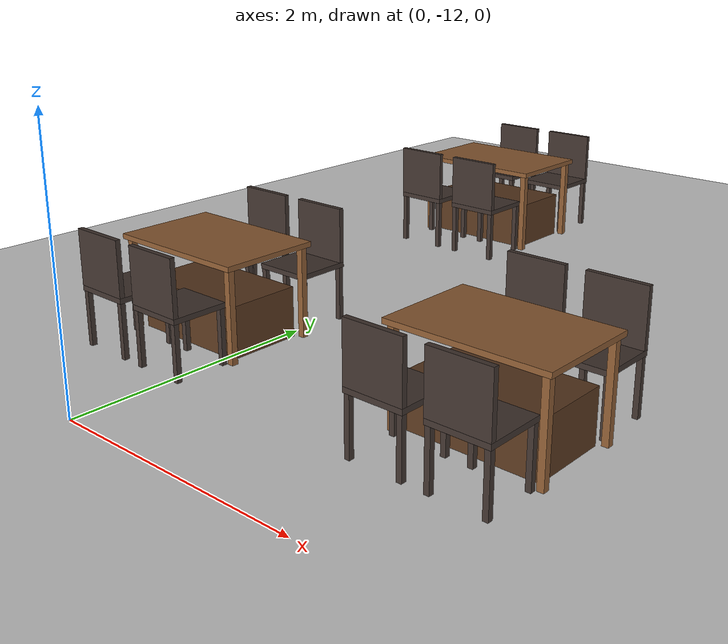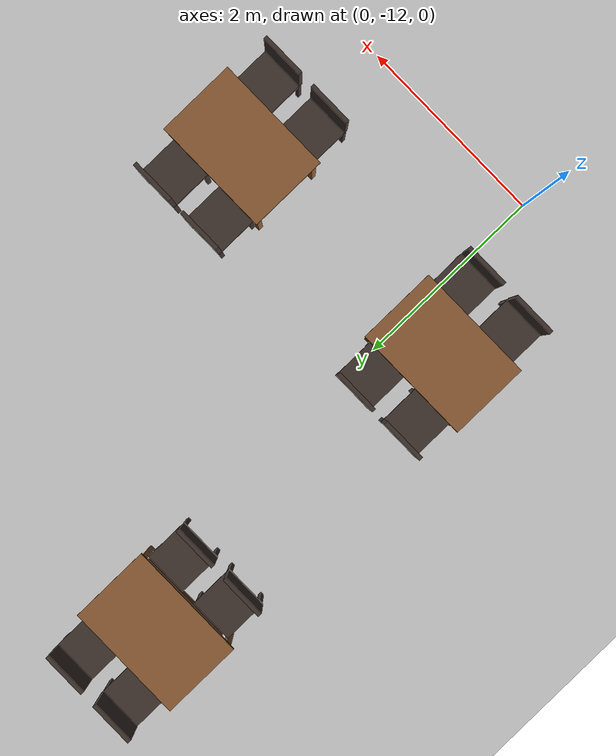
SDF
<sdf version="1.6">
 <world name="restaurant">
  <model name="ground_plane">
   <static>1</static>
   <link name="link">
    <collision name="collision">
     <geometry><plane><normal>0 0 1</normal><size>100 100</size></plane></geometry>
     <surface><friction><ode><mu>100</mu><mu2>50</mu2></ode></friction></surface>
    </collision>
    <visual name="visual">
     <cast_shadows>0</cast_shadows>
     <geometry><plane><normal>0 0 1</normal><size>100 100</size></plane></geometry>
     <material>
      <script><uri>file://media/materials/scripts/gazebo.material</uri><name>Gazebo/Grey</name></script>
     </material>
    </visual>
   </link>
  </model>
  <model name="table_15">
   <static>true</static>
   <pose>-0.4360 -6.7909 0 0 0 0</pose>
   <link name="link">
    <collision name="base_collision">
     <pose>0.0000 0.0000 0.2000 0 0 0</pose>
     <geometry><box><size>1.0000 0.6000 0.4000</size></box></geometry>
    </collision>
    <visual name="base_visual">
     <pose>0.0000 0.0000 0.2000 0 0 0</pose>
     <geometry><box><size>1.0000 0.6000 0.4000</size></box></geometry>
     <material>
      <ambient>0.35 0.22 0.12 1</ambient>
      <diffuse>0.35 0.22 0.12 1</diffuse>
      <specular>0.05 0.05 0.05 1</specular>
     </material>
    </visual>
    <collision name="top_collision">
     <pose>0.0000 0.0000 0.7300 0 0 0</pose>
     <geometry><box><size>1.2000 0.8000 0.0400</size></box></geometry>
    </collision>
    <visual name="top_visual">
     <pose>0.0000 0.0000 0.7300 0 0 0</pose>
     <geometry><box><size>1.2000 0.8000 0.0400</size></box></geometry>
     <material>
      <ambient>0.55 0.36 0.2 1</ambient>
      <diffuse>0.55 0.36 0.2 1</diffuse>
      <specular>0.05 0.05 0.05 1</specular>
     </material>
    </visual>
    <collision name="leg0_collision">
     <pose>0.5500 0.3500 0.3550 0 0 0</pose>
     <geometry><box><size>0.0500 0.0500 0.7100</size></box></geometry>
    </collision>
    <visual name="leg0_visual">
     <pose>0.5500 0.3500 0.3550 0 0 0</pose>
     <geometry><box><size>0.0500 0.0500 0.7100</size></box></geometry>
     <material>
      <ambient>0.55 0.36 0.2 1</ambient>
      <diffuse>0.55 0.36 0.2 1</diffuse>
      <specular>0.05 0.05 0.05 1</specular>
     </material>
    </visual>
    <collision name="leg1_collision">
     <pose>0.5500 -0.3500 0.3550 0 0 0</pose>
     <geometry><box><size>0.0500 0.0500 0.7100</size></box></geometry>
    </collision>
    <visual name="leg1_visual">
     <pose>0.5500 -0.3500 0.3550 0 0 0</pose>
     <geometry><box><size>0.0500 0.0500 0.7100</size></box></geometry>
     <material>
      <ambient>0.55 0.36 0.2 1</ambient>
      <diffuse>0.55 0.36 0.2 1</diffuse>
      <specular>0.05 0.05 0.05 1</specular>
     </material>
    </visual>
    <collision name="leg2_collision">
     <pose>-0.5500 0.3500 0.3550 0 0 0</pose>
     <geometry><box><size>0.0500 0.0500 0.7100</size></box></geometry>
    </collision>
    <visual name="leg2_visual">
     <pose>-0.5500 0.3500 0.3550 0 0 0</pose>
     <geometry><box><size>0.0500 0.0500 0.7100</size></box></geometry>
     <material>
      <ambient>0.55 0.36 0.2 1</ambient>
      <diffuse>0.55 0.36 0.2 1</diffuse>
      <specular>0.05 0.05 0.05 1</specular>
     </material>
    </visual>
    <collision name="leg3_collision">
     <pose>-0.5500 -0.3500 0.3550 0 0 0</pose>
     <geometry><box><size>0.0500 0.0500 0.7100</size></box></geometry>
    </collision>
    <visual name="leg3_visual">
     <pose>-0.5500 -0.3500 0.3550 0 0 0</pose>
     <geometry><box><size>0.0500 0.0500 0.7100</size></box></geometry>
     <material>
      <ambient>0.55 0.36 0.2 1</ambient>
      <diffuse>0.55 0.36 0.2 1</diffuse>
      <specular>0.05 0.05 0.05 1</specular>
     </material>
    </visual>
    <collision name="chair0_seat_collision">
     <pose>-0.3000 0.6000 0.4500 0 0 0</pose>
     <geometry><box><size>0.4500 0.4500 0.0400</size></box></geometry>
    </collision>
    <visual name="chair0_seat_visual">
     <pose>-0.3000 0.6000 0.4500 0 0 0</pose>
     <geometry><box><size>0.4500 0.4500 0.0400</size></box></geometry>
     <material>
      <ambient>0.25 0.2 0.18 1</ambient>
      <diffuse>0.25 0.2 0.18 1</diffuse>
      <specular>0.05 0.05 0.05 1</specular>
     </material>
    </visual>
    <collision name="chair0_leg0_collision">
     <pose>-0.1000 0.8000 0.2150 0 0 0</pose>
     <geometry><box><size>0.0400 0.0400 0.4300</size></box></geometry>
    </collision>
    <visual name="chair0_leg0_visual">
     <pose>-0.1000 0.8000 0.2150 0 0 0</pose>
     <geometry><box><size>0.0400 0.0400 0.4300</size></box></geometry>
     <material>
      <ambient>0.25 0.2 0.18 1</ambient>
      <diffuse>0.25 0.2 0.18 1</diffuse>
      <specular>0.05 0.05 0.05 1</specular>
     </material>
    </visual>
    <collision name="chair0_leg1_collision">
     <pose>-0.1000 0.4000 0.2150 0 0 0</pose>
     <geometry><box><size>0.0400 0.0400 0.4300</size></box></geometry>
    </collision>
    <visual name="chair0_leg1_visual">
     <pose>-0.1000 0.4000 0.2150 0 0 0</pose>
     <geometry><box><size>0.0400 0.0400 0.4300</size></box></geometry>
     <material>
      <ambient>0.25 0.2 0.18 1</ambient>
      <diffuse>0.25 0.2 0.18 1</diffuse>
      <specular>0.05 0.05 0.05 1</specular>
     </material>
    </visual>
    <collision name="chair0_leg2_collision">
     <pose>-0.5000 0.8000 0.2150 0 0 0</pose>
     <geometry><box><size>0.0400 0.0400 0.4300</size></box></geometry>
    </collision>
    <visual name="chair0_leg2_visual">
     <pose>-0.5000 0.8000 0.2150 0 0 0</pose>
     <geometry><box><size>0.0400 0.0400 0.4300</size></box></geometry>
     <material>
      <ambient>0.25 0.2 0.18 1</ambient>
      <diffuse>0.25 0.2 0.18 1</diffuse>
      <specular>0.05 0.05 0.05 1</specular>
     </material>
    </visual>
    <collision name="chair0_leg3_collision">
     <pose>-0.5000 0.4000 0.2150 0 0 0</pose>
     <geometry><box><size>0.0400 0.0400 0.4300</size></box></geometry>
    </collision>
    <visual name="chair0_leg3_visual">
     <pose>-0.5000 0.4000 0.2150 0 0 0</pose>
     <geometry><box><size>0.0400 0.0400 0.4300</size></box></geometry>
     <material>
      <ambient>0.25 0.2 0.18 1</ambient>
      <diffuse>0.25 0.2 0.18 1</diffuse>
      <specular>0.05 0.05 0.05 1</specular>
     </material>
    </visual>
    <collision name="chair0_back_collision">
     <pose>-0.3000 0.8050 0.6850 0 0 0</pose>
     <geometry><box><size>0.4500 0.0400 0.4300</size></box></geometry>
    </collision>
    <visual name="chair0_back_visual">
     <pose>-0.3000 0.8050 0.6850 0 0 0</pose>
     <geometry><box><size>0.4500 0.0400 0.4300</size></box></geometry>
     <material>
      <ambient>0.25 0.2 0.18 1</ambient>
      <diffuse>0.25 0.2 0.18 1</diffuse>
      <specular>0.05 0.05 0.05 1</specular>
     </material>
    </visual>
    <collision name="chair1_seat_collision">
     <pose>-0.3000 -0.6000 0.4500 0 0 0</pose>
     <geometry><box><size>0.4500 0.4500 0.0400</size></box></geometry>
    </collision>
    <visual name="chair1_seat_visual">
     <pose>-0.3000 -0.6000 0.4500 0 0 0</pose>
     <geometry><box><size>0.4500 0.4500 0.0400</size></box></geometry>
     <material>
      <ambient>0.25 0.2 0.18 1</ambient>
      <diffuse>0.25 0.2 0.18 1</diffuse>
      <specular>0.05 0.05 0.05 1</specular>
     </material>
    </visual>
    <collision name="chair1_leg0_collision">
     <pose>-0.1000 -0.4000 0.2150 0 0 0</pose>
     <geometry><box><size>0.0400 0.0400 0.4300</size></box></geometry>
    </collision>
    <visual name="chair1_leg0_visual">
     <pose>-0.1000 -0.4000 0.2150 0 0 0</pose>
     <geometry><box><size>0.0400 0.0400 0.4300</size></box></geometry>
     <material>
      <ambient>0.25 0.2 0.18 1</ambient>
      <diffuse>0.25 0.2 0.18 1</diffuse>
      <specular>0.05 0.05 0.05 1</specular>
     </material>
    </visual>
    <collision name="chair1_leg1_collision">
     <pose>-0.1000 -0.8000 0.2150 0 0 0</pose>
     <geometry><box><size>0.0400 0.0400 0.4300</size></box></geometry>
    </collision>
    <visual name="chair1_leg1_visual">
     <pose>-0.1000 -0.8000 0.2150 0 0 0</pose>
     <geometry><box><size>0.0400 0.0400 0.4300</size></box></geometry>
     <material>
      <ambient>0.25 0.2 0.18 1</ambient>
      <diffuse>0.25 0.2 0.18 1</diffuse>
      <specular>0.05 0.05 0.05 1</specular>
     </material>
    </visual>
    <collision name="chair1_leg2_collision">
     <pose>-0.5000 -0.4000 0.2150 0 0 0</pose>
     <geometry><box><size>0.0400 0.0400 0.4300</size></box></geometry>
    </collision>
    <visual name="chair1_leg2_visual">
     <pose>-0.5000 -0.4000 0.2150 0 0 0</pose>
     <geometry><box><size>0.0400 0.0400 0.4300</size></box></geometry>
     <material>
      <ambient>0.25 0.2 0.18 1</ambient>
      <diffuse>0.25 0.2 0.18 1</diffuse>
      <specular>0.05 0.05 0.05 1</specular>
     </material>
    </visual>
    <collision name="chair1_leg3_collision">
     <pose>-0.5000 -0.8000 0.2150 0 0 0</pose>
     <geometry><box><size>0.0400 0.0400 0.4300</size></box></geometry>
    </collision>
    <visual name="chair1_leg3_visual">
     <pose>-0.5000 -0.8000 0.2150 0 0 0</pose>
     <geometry><box><size>0.0400 0.0400 0.4300</size></box></geometry>
     <material>
      <ambient>0.25 0.2 0.18 1</ambient>
      <diffuse>0.25 0.2 0.18 1</diffuse>
      <specular>0.05 0.05 0.05 1</specular>
     </material>
    </visual>
    <collision name="chair1_back_collision">
     <pose>-0.3000 -0.8050 0.6850 0 0 0</pose>
     <geometry><box><size>0.4500 0.0400 0.4300</size></box></geometry>
    </collision>
    <visual name="chair1_back_visual">
     <pose>-0.3000 -0.8050 0.6850 0 0 0</pose>
     <geometry><box><size>0.4500 0.0400 0.4300</size></box></geometry>
     <material>
      <ambient>0.25 0.2 0.18 1</ambient>
      <diffuse>0.25 0.2 0.18 1</diffuse>
      <specular>0.05 0.05 0.05 1</specular>
     </material>
    </visual>
    <collision name="chair2_seat_collision">
     <pose>0.3000 0.6000 0.4500 0 0 0</pose>
     <geometry><box><size>0.4500 0.4500 0.0400</size></box></geometry>
    </collision>
    <visual name="chair2_seat_visual">
     <pose>0.3000 0.6000 0.4500 0 0 0</pose>
     <geometry><box><size>0.4500 0.4500 0.0400</size></box></geometry>
     <material>
      <ambient>0.25 0.2 0.18 1</ambient>
      <diffuse>0.25 0.2 0.18 1</diffuse>
      <specular>0.05 0.05 0.05 1</specular>
     </material>
    </visual>
    <collision name="chair2_leg0_collision">
     <pose>0.5000 0.8000 0.2150 0 0 0</pose>
     <geometry><box><size>0.0400 0.0400 0.4300</size></box></geometry>
    </collision>
    <visual name="chair2_leg0_visual">
     <pose>0.5000 0.8000 0.2150 0 0 0</pose>
     <geometry><box><size>0.0400 0.0400 0.4300</size></box></geometry>
     <material>
      <ambient>0.25 0.2 0.18 1</ambient>
      <diffuse>0.25 0.2 0.18 1</diffuse>
      <specular>0.05 0.05 0.05 1</specular>
     </material>
    </visual>
    <collision name="chair2_leg1_collision">
     <pose>0.5000 0.4000 0.2150 0 0 0</pose>
     <geometry><box><size>0.0400 0.0400 0.4300</size></box></geometry>
    </collision>
    <visual name="chair2_leg1_visual">
     <pose>0.5000 0.4000 0.2150 0 0 0</pose>
     <geometry><box><size>0.0400 0.0400 0.4300</size></box></geometry>
     <material>
      <ambient>0.25 0.2 0.18 1</ambient>
      <diffuse>0.25 0.2 0.18 1</diffuse>
      <specular>0.05 0.05 0.05 1</specular>
     </material>
    </visual>
    <collision name="chair2_leg2_collision">
     <pose>0.1000 0.8000 0.2150 0 0 0</pose>
     <geometry><box><size>0.0400 0.0400 0.4300</size></box></geometry>
    </collision>
    <visual name="chair2_leg2_visual">
     <pose>0.1000 0.8000 0.2150 0 0 0</pose>
     <geometry><box><size>0.0400 0.0400 0.4300</size></box></geometry>
     <material>
      <ambient>0.25 0.2 0.18 1</ambient>
      <diffuse>0.25 0.2 0.18 1</diffuse>
      <specular>0.05 0.05 0.05 1</specular>
     </material>
    </visual>
    <collision name="chair2_leg3_collision">
     <pose>0.1000 0.4000 0.2150 0 0 0</pose>
     <geometry><box><size>0.0400 0.0400 0.4300</size></box></geometry>
    </collision>
    <visual name="chair2_leg3_visual">
     <pose>0.1000 0.4000 0.2150 0 0 0</pose>
     <geometry><box><size>0.0400 0.0400 0.4300</size></box></geometry>
     <material>
      <ambient>0.25 0.2 0.18 1</ambient>
      <diffuse>0.25 0.2 0.18 1</diffuse>
      <specular>0.05 0.05 0.05 1</specular>
     </material>
    </visual>
    <collision name="chair2_back_collision">
     <pose>0.3000 0.8050 0.6850 0 0 0</pose>
     <geometry><box><size>0.4500 0.0400 0.4300</size></box></geometry>
    </collision>
    <visual name="chair2_back_visual">
     <pose>0.3000 0.8050 0.6850 0 0 0</pose>
     <geometry><box><size>0.4500 0.0400 0.4300</size></box></geometry>
     <material>
      <ambient>0.25 0.2 0.18 1</ambient>
      <diffuse>0.25 0.2 0.18 1</diffuse>
      <specular>0.05 0.05 0.05 1</specular>
     </material>
    </visual>
    <collision name="chair3_seat_collision">
     <pose>0.3000 -0.6000 0.4500 0 0 0</pose>
     <geometry><box><size>0.4500 0.4500 0.0400</size></box></geometry>
    </collision>
    <visual name="chair3_seat_visual">
     <pose>0.3000 -0.6000 0.4500 0 0 0</pose>
     <geometry><box><size>0.4500 0.4500 0.0400</size></box></geometry>
     <material>
      <ambient>0.25 0.2 0.18 1</ambient>
      <diffuse>0.25 0.2 0.18 1</diffuse>
      <specular>0.05 0.05 0.05 1</specular>
     </material>
    </visual>
    <collision name="chair3_leg0_collision">
     <pose>0.5000 -0.4000 0.2150 0 0 0</pose>
     <geometry><box><size>0.0400 0.0400 0.4300</size></box></geometry>
    </collision>
    <visual name="chair3_leg0_visual">
     <pose>0.5000 -0.4000 0.2150 0 0 0</pose>
     <geometry><box><size>0.0400 0.0400 0.4300</size></box></geometry>
     <material>
      <ambient>0.25 0.2 0.18 1</ambient>
      <diffuse>0.25 0.2 0.18 1</diffuse>
      <specular>0.05 0.05 0.05 1</specular>
     </material>
    </visual>
    <collision name="chair3_leg1_collision">
     <pose>0.5000 -0.8000 0.2150 0 0 0</pose>
     <geometry><box><size>0.0400 0.0400 0.4300</size></box></geometry>
    </collision>
    <visual name="chair3_leg1_visual">
     <pose>0.5000 -0.8000 0.2150 0 0 0</pose>
     <geometry><box><size>0.0400 0.0400 0.4300</size></box></geometry>
     <material>
      <ambient>0.25 0.2 0.18 1</ambient>
      <diffuse>0.25 0.2 0.18 1</diffuse>
      <specular>0.05 0.05 0.05 1</specular>
     </material>
    </visual>
    <collision name="chair3_leg2_collision">
     <pose>0.1000 -0.4000 0.2150 0 0 0</pose>
     <geometry><box><size>0.0400 0.0400 0.4300</size></box></geometry>
    </collision>
    <visual name="chair3_leg2_visual">
     <pose>0.1000 -0.4000 0.2150 0 0 0</pose>
     <geometry><box><size>0.0400 0.0400 0.4300</size></box></geometry>
     <material>
      <ambient>0.25 0.2 0.18 1</ambient>
      <diffuse>0.25 0.2 0.18 1</diffuse>
      <specular>0.05 0.05 0.05 1</specular>
     </material>
    </visual>
    <collision name="chair3_leg3_collision">
     <pose>0.1000 -0.8000 0.2150 0 0 0</pose>
     <geometry><box><size>0.0400 0.0400 0.4300</size></box></geometry>
    </collision>
    <visual name="chair3_leg3_visual">
     <pose>0.1000 -0.8000 0.2150 0 0 0</pose>
     <geometry><box><size>0.0400 0.0400 0.4300</size></box></geometry>
     <material>
      <ambient>0.25 0.2 0.18 1</ambient>
      <diffuse>0.25 0.2 0.18 1</diffuse>
      <specular>0.05 0.05 0.05 1</specular>
     </material>
    </visual>
    <collision name="chair3_back_collision">
     <pose>0.3000 -0.8050 0.6850 0 0 0</pose>
     <geometry><box><size>0.4500 0.0400 0.4300</size></box></geometry>
    </collision>
    <visual name="chair3_back_visual">
     <pose>0.3000 -0.8050 0.6850 0 0 0</pose>
     <geometry><box><size>0.4500 0.0400 0.4300</size></box></geometry>
     <material>
      <ambient>0.25 0.2 0.18 1</ambient>
      <diffuse>0.25 0.2 0.18 1</diffuse>
      <specular>0.05 0.05 0.05 1</specular>
     </material>
    </visual>
   </link>
  </model>
  <model name="table_21">
   <static>true</static>
   <pose>-0.4360 -10.3909 0 0 0 0</pose>
   <link name="link">
    <collision name="base_collision">
     <pose>0.0000 0.0000 0.2000 0 0 0</pose>
     <geometry><box><size>1.0000 0.6000 0.4000</size></box></geometry>
    </collision>
    <visual name="base_visual">
     <pose>0.0000 0.0000 0.2000 0 0 0</pose>
     <geometry><box><size>1.0000 0.6000 0.4000</size></box></geometry>
     <material>
      <ambient>0.35 0.22 0.12 1</ambient>
      <diffuse>0.35 0.22 0.12 1</diffuse>
      <specular>0.05 0.05 0.05 1</specular>
     </material>
    </visual>
    <collision name="top_collision">
     <pose>0.0000 0.0000 0.7300 0 0 0</pose>
     <geometry><box><size>1.2000 0.8000 0.0400</size></box></geometry>
    </collision>
    <visual name="top_visual">
     <pose>0.0000 0.0000 0.7300 0 0 0</pose>
     <geometry><box><size>1.2000 0.8000 0.0400</size></box></geometry>
     <material>
      <ambient>0.55 0.36 0.2 1</ambient>
      <diffuse>0.55 0.36 0.2 1</diffuse>
      <specular>0.05 0.05 0.05 1</specular>
     </material>
    </visual>
    <collision name="leg0_collision">
     <pose>0.5500 0.3500 0.3550 0 0 0</pose>
     <geometry><box><size>0.0500 0.0500 0.7100</size></box></geometry>
    </collision>
    <visual name="leg0_visual">
     <pose>0.5500 0.3500 0.3550 0 0 0</pose>
     <geometry><box><size>0.0500 0.0500 0.7100</size></box></geometry>
     <material>
      <ambient>0.55 0.36 0.2 1</ambient>
      <diffuse>0.55 0.36 0.2 1</diffuse>
      <specular>0.05 0.05 0.05 1</specular>
     </material>
    </visual>
    <collision name="leg1_collision">
     <pose>0.5500 -0.3500 0.3550 0 0 0</pose>
     <geometry><box><size>0.0500 0.0500 0.7100</size></box></geometry>
    </collision>
    <visual name="leg1_visual">
     <pose>0.5500 -0.3500 0.3550 0 0 0</pose>
     <geometry><box><size>0.0500 0.0500 0.7100</size></box></geometry>
     <material>
      <ambient>0.55 0.36 0.2 1</ambient>
      <diffuse>0.55 0.36 0.2 1</diffuse>
      <specular>0.05 0.05 0.05 1</specular>
     </material>
    </visual>
    <collision name="leg2_collision">
     <pose>-0.5500 0.3500 0.3550 0 0 0</pose>
     <geometry><box><size>0.0500 0.0500 0.7100</size></box></geometry>
    </collision>
    <visual name="leg2_visual">
     <pose>-0.5500 0.3500 0.3550 0 0 0</pose>
     <geometry><box><size>0.0500 0.0500 0.7100</size></box></geometry>
     <material>
      <ambient>0.55 0.36 0.2 1</ambient>
      <diffuse>0.55 0.36 0.2 1</diffuse>
      <specular>0.05 0.05 0.05 1</specular>
     </material>
    </visual>
    <collision name="leg3_collision">
     <pose>-0.5500 -0.3500 0.3550 0 0 0</pose>
     <geometry><box><size>0.0500 0.0500 0.7100</size></box></geometry>
    </collision>
    <visual name="leg3_visual">
     <pose>-0.5500 -0.3500 0.3550 0 0 0</pose>
     <geometry><box><size>0.0500 0.0500 0.7100</size></box></geometry>
     <material>
      <ambient>0.55 0.36 0.2 1</ambient>
      <diffuse>0.55 0.36 0.2 1</diffuse>
      <specular>0.05 0.05 0.05 1</specular>
     </material>
    </visual>
    <collision name="chair0_seat_collision">
     <pose>-0.3000 0.6000 0.4500 0 0 0</pose>
     <geometry><box><size>0.4500 0.4500 0.0400</size></box></geometry>
    </collision>
    <visual name="chair0_seat_visual">
     <pose>-0.3000 0.6000 0.4500 0 0 0</pose>
     <geometry><box><size>0.4500 0.4500 0.0400</size></box></geometry>
     <material>
      <ambient>0.25 0.2 0.18 1</ambient>
      <diffuse>0.25 0.2 0.18 1</diffuse>
      <specular>0.05 0.05 0.05 1</specular>
     </material>
    </visual>
    <collision name="chair0_leg0_collision">
     <pose>-0.1000 0.8000 0.2150 0 0 0</pose>
     <geometry><box><size>0.0400 0.0400 0.4300</size></box></geometry>
    </collision>
    <visual name="chair0_leg0_visual">
     <pose>-0.1000 0.8000 0.2150 0 0 0</pose>
     <geometry><box><size>0.0400 0.0400 0.4300</size></box></geometry>
     <material>
      <ambient>0.25 0.2 0.18 1</ambient>
      <diffuse>0.25 0.2 0.18 1</diffuse>
      <specular>0.05 0.05 0.05 1</specular>
     </material>
    </visual>
    <collision name="chair0_leg1_collision">
     <pose>-0.1000 0.4000 0.2150 0 0 0</pose>
     <geometry><box><size>0.0400 0.0400 0.4300</size></box></geometry>
    </collision>
    <visual name="chair0_leg1_visual">
     <pose>-0.1000 0.4000 0.2150 0 0 0</pose>
     <geometry><box><size>0.0400 0.0400 0.4300</size></box></geometry>
     <material>
      <ambient>0.25 0.2 0.18 1</ambient>
      <diffuse>0.25 0.2 0.18 1</diffuse>
      <specular>0.05 0.05 0.05 1</specular>
     </material>
    </visual>
    <collision name="chair0_leg2_collision">
     <pose>-0.5000 0.8000 0.2150 0 0 0</pose>
     <geometry><box><size>0.0400 0.0400 0.4300</size></box></geometry>
    </collision>
    <visual name="chair0_leg2_visual">
     <pose>-0.5000 0.8000 0.2150 0 0 0</pose>
     <geometry><box><size>0.0400 0.0400 0.4300</size></box></geometry>
     <material>
      <ambient>0.25 0.2 0.18 1</ambient>
      <diffuse>0.25 0.2 0.18 1</diffuse>
      <specular>0.05 0.05 0.05 1</specular>
     </material>
    </visual>
    <collision name="chair0_leg3_collision">
     <pose>-0.5000 0.4000 0.2150 0 0 0</pose>
     <geometry><box><size>0.0400 0.0400 0.4300</size></box></geometry>
    </collision>
    <visual name="chair0_leg3_visual">
     <pose>-0.5000 0.4000 0.2150 0 0 0</pose>
     <geometry><box><size>0.0400 0.0400 0.4300</size></box></geometry>
     <material>
      <ambient>0.25 0.2 0.18 1</ambient>
      <diffuse>0.25 0.2 0.18 1</diffuse>
      <specular>0.05 0.05 0.05 1</specular>
     </material>
    </visual>
    <collision name="chair0_back_collision">
     <pose>-0.3000 0.8050 0.6850 0 0 0</pose>
     <geometry><box><size>0.4500 0.0400 0.4300</size></box></geometry>
    </collision>
    <visual name="chair0_back_visual">
     <pose>-0.3000 0.8050 0.6850 0 0 0</pose>
     <geometry><box><size>0.4500 0.0400 0.4300</size></box></geometry>
     <material>
      <ambient>0.25 0.2 0.18 1</ambient>
      <diffuse>0.25 0.2 0.18 1</diffuse>
      <specular>0.05 0.05 0.05 1</specular>
     </material>
    </visual>
    <collision name="chair1_seat_collision">
     <pose>-0.3000 -0.6000 0.4500 0 0 0</pose>
     <geometry><box><size>0.4500 0.4500 0.0400</size></box></geometry>
    </collision>
    <visual name="chair1_seat_visual">
     <pose>-0.3000 -0.6000 0.4500 0 0 0</pose>
     <geometry><box><size>0.4500 0.4500 0.0400</size></box></geometry>
     <material>
      <ambient>0.25 0.2 0.18 1</ambient>
      <diffuse>0.25 0.2 0.18 1</diffuse>
      <specular>0.05 0.05 0.05 1</specular>
     </material>
    </visual>
    <collision name="chair1_leg0_collision">
     <pose>-0.1000 -0.4000 0.2150 0 0 0</pose>
     <geometry><box><size>0.0400 0.0400 0.4300</size></box></geometry>
    </collision>
    <visual name="chair1_leg0_visual">
     <pose>-0.1000 -0.4000 0.2150 0 0 0</pose>
     <geometry><box><size>0.0400 0.0400 0.4300</size></box></geometry>
     <material>
      <ambient>0.25 0.2 0.18 1</ambient>
      <diffuse>0.25 0.2 0.18 1</diffuse>
      <specular>0.05 0.05 0.05 1</specular>
     </material>
    </visual>
    <collision name="chair1_leg1_collision">
     <pose>-0.1000 -0.8000 0.2150 0 0 0</pose>
     <geometry><box><size>0.0400 0.0400 0.4300</size></box></geometry>
    </collision>
    <visual name="chair1_leg1_visual">
     <pose>-0.1000 -0.8000 0.2150 0 0 0</pose>
     <geometry><box><size>0.0400 0.0400 0.4300</size></box></geometry>
     <material>
      <ambient>0.25 0.2 0.18 1</ambient>
      <diffuse>0.25 0.2 0.18 1</diffuse>
      <specular>0.05 0.05 0.05 1</specular>
     </material>
    </visual>
    <collision name="chair1_leg2_collision">
     <pose>-0.5000 -0.4000 0.2150 0 0 0</pose>
     <geometry><box><size>0.0400 0.0400 0.4300</size></box></geometry>
    </collision>
    <visual name="chair1_leg2_visual">
     <pose>-0.5000 -0.4000 0.2150 0 0 0</pose>
     <geometry><box><size>0.0400 0.0400 0.4300</size></box></geometry>
     <material>
      <ambient>0.25 0.2 0.18 1</ambient>
      <diffuse>0.25 0.2 0.18 1</diffuse>
      <specular>0.05 0.05 0.05 1</specular>
     </material>
    </visual>
    <collision name="chair1_leg3_collision">
     <pose>-0.5000 -0.8000 0.2150 0 0 0</pose>
     <geometry><box><size>0.0400 0.0400 0.4300</size></box></geometry>
    </collision>
    <visual name="chair1_leg3_visual">
     <pose>-0.5000 -0.8000 0.2150 0 0 0</pose>
     <geometry><box><size>0.0400 0.0400 0.4300</size></box></geometry>
     <material>
      <ambient>0.25 0.2 0.18 1</ambient>
      <diffuse>0.25 0.2 0.18 1</diffuse>
      <specular>0.05 0.05 0.05 1</specular>
     </material>
    </visual>
    <collision name="chair1_back_collision">
     <pose>-0.3000 -0.8050 0.6850 0 0 0</pose>
     <geometry><box><size>0.4500 0.0400 0.4300</size></box></geometry>
    </collision>
    <visual name="chair1_back_visual">
     <pose>-0.3000 -0.8050 0.6850 0 0 0</pose>
     <geometry><box><size>0.4500 0.0400 0.4300</size></box></geometry>
     <material>
      <ambient>0.25 0.2 0.18 1</ambient>
      <diffuse>0.25 0.2 0.18 1</diffuse>
      <specular>0.05 0.05 0.05 1</specular>
     </material>
    </visual>
    <collision name="chair2_seat_collision">
     <pose>0.3000 0.6000 0.4500 0 0 0</pose>
     <geometry><box><size>0.4500 0.4500 0.0400</size></box></geometry>
    </collision>
    <visual name="chair2_seat_visual">
     <pose>0.3000 0.6000 0.4500 0 0 0</pose>
     <geometry><box><size>0.4500 0.4500 0.0400</size></box></geometry>
     <material>
      <ambient>0.25 0.2 0.18 1</ambient>
      <diffuse>0.25 0.2 0.18 1</diffuse>
      <specular>0.05 0.05 0.05 1</specular>
     </material>
    </visual>
    <collision name="chair2_leg0_collision">
     <pose>0.5000 0.8000 0.2150 0 0 0</pose>
     <geometry><box><size>0.0400 0.0400 0.4300</size></box></geometry>
    </collision>
    <visual name="chair2_leg0_visual">
     <pose>0.5000 0.8000 0.2150 0 0 0</pose>
     <geometry><box><size>0.0400 0.0400 0.4300</size></box></geometry>
     <material>
      <ambient>0.25 0.2 0.18 1</ambient>
      <diffuse>0.25 0.2 0.18 1</diffuse>
      <specular>0.05 0.05 0.05 1</specular>
     </material>
    </visual>
    <collision name="chair2_leg1_collision">
     <pose>0.5000 0.4000 0.2150 0 0 0</pose>
     <geometry><box><size>0.0400 0.0400 0.4300</size></box></geometry>
    </collision>
    <visual name="chair2_leg1_visual">
     <pose>0.5000 0.4000 0.2150 0 0 0</pose>
     <geometry><box><size>0.0400 0.0400 0.4300</size></box></geometry>
     <material>
      <ambient>0.25 0.2 0.18 1</ambient>
      <diffuse>0.25 0.2 0.18 1</diffuse>
      <specular>0.05 0.05 0.05 1</specular>
     </material>
    </visual>
    <collision name="chair2_leg2_collision">
     <pose>0.1000 0.8000 0.2150 0 0 0</pose>
     <geometry><box><size>0.0400 0.0400 0.4300</size></box></geometry>
    </collision>
    <visual name="chair2_leg2_visual">
     <pose>0.1000 0.8000 0.2150 0 0 0</pose>
     <geometry><box><size>0.0400 0.0400 0.4300</size></box></geometry>
     <material>
      <ambient>0.25 0.2 0.18 1</ambient>
      <diffuse>0.25 0.2 0.18 1</diffuse>
      <specular>0.05 0.05 0.05 1</specular>
     </material>
    </visual>
    <collision name="chair2_leg3_collision">
     <pose>0.1000 0.4000 0.2150 0 0 0</pose>
     <geometry><box><size>0.0400 0.0400 0.4300</size></box></geometry>
    </collision>
    <visual name="chair2_leg3_visual">
     <pose>0.1000 0.4000 0.2150 0 0 0</pose>
     <geometry><box><size>0.0400 0.0400 0.4300</size></box></geometry>
     <material>
      <ambient>0.25 0.2 0.18 1</ambient>
      <diffuse>0.25 0.2 0.18 1</diffuse>
      <specular>0.05 0.05 0.05 1</specular>
     </material>
    </visual>
    <collision name="chair2_back_collision">
     <pose>0.3000 0.8050 0.6850 0 0 0</pose>
     <geometry><box><size>0.4500 0.0400 0.4300</size></box></geometry>
    </collision>
    <visual name="chair2_back_visual">
     <pose>0.3000 0.8050 0.6850 0 0 0</pose>
     <geometry><box><size>0.4500 0.0400 0.4300</size></box></geometry>
     <material>
      <ambient>0.25 0.2 0.18 1</ambient>
      <diffuse>0.25 0.2 0.18 1</diffuse>
      <specular>0.05 0.05 0.05 1</specular>
     </material>
    </visual>
    <collision name="chair3_seat_collision">
     <pose>0.3000 -0.6000 0.4500 0 0 0</pose>
     <geometry><box><size>0.4500 0.4500 0.0400</size></box></geometry>
    </collision>
    <visual name="chair3_seat_visual">
     <pose>0.3000 -0.6000 0.4500 0 0 0</pose>
     <geometry><box><size>0.4500 0.4500 0.0400</size></box></geometry>
     <material>
      <ambient>0.25 0.2 0.18 1</ambient>
      <diffuse>0.25 0.2 0.18 1</diffuse>
      <specular>0.05 0.05 0.05 1</specular>
     </material>
    </visual>
    <collision name="chair3_leg0_collision">
     <pose>0.5000 -0.4000 0.2150 0 0 0</pose>
     <geometry><box><size>0.0400 0.0400 0.4300</size></box></geometry>
    </collision>
    <visual name="chair3_leg0_visual">
     <pose>0.5000 -0.4000 0.2150 0 0 0</pose>
     <geometry><box><size>0.0400 0.0400 0.4300</size></box></geometry>
     <material>
      <ambient>0.25 0.2 0.18 1</ambient>
      <diffuse>0.25 0.2 0.18 1</diffuse>
      <specular>0.05 0.05 0.05 1</specular>
     </material>
    </visual>
    <collision name="chair3_leg1_collision">
     <pose>0.5000 -0.8000 0.2150 0 0 0</pose>
     <geometry><box><size>0.0400 0.0400 0.4300</size></box></geometry>
    </collision>
    <visual name="chair3_leg1_visual">
     <pose>0.5000 -0.8000 0.2150 0 0 0</pose>
     <geometry><box><size>0.0400 0.0400 0.4300</size></box></geometry>
     <material>
      <ambient>0.25 0.2 0.18 1</ambient>
      <diffuse>0.25 0.2 0.18 1</diffuse>
      <specular>0.05 0.05 0.05 1</specular>
     </material>
    </visual>
    <collision name="chair3_leg2_collision">
     <pose>0.1000 -0.4000 0.2150 0 0 0</pose>
     <geometry><box><size>0.0400 0.0400 0.4300</size></box></geometry>
    </collision>
    <visual name="chair3_leg2_visual">
     <pose>0.1000 -0.4000 0.2150 0 0 0</pose>
     <geometry><box><size>0.0400 0.0400 0.4300</size></box></geometry>
     <material>
      <ambient>0.25 0.2 0.18 1</ambient>
      <diffuse>0.25 0.2 0.18 1</diffuse>
      <specular>0.05 0.05 0.05 1</specular>
     </material>
    </visual>
    <collision name="chair3_leg3_collision">
     <pose>0.1000 -0.8000 0.2150 0 0 0</pose>
     <geometry><box><size>0.0400 0.0400 0.4300</size></box></geometry>
    </collision>
    <visual name="chair3_leg3_visual">
     <pose>0.1000 -0.8000 0.2150 0 0 0</pose>
     <geometry><box><size>0.0400 0.0400 0.4300</size></box></geometry>
     <material>
      <ambient>0.25 0.2 0.18 1</ambient>
      <diffuse>0.25 0.2 0.18 1</diffuse>
      <specular>0.05 0.05 0.05 1</specular>
     </material>
    </visual>
    <collision name="chair3_back_collision">
     <pose>0.3000 -0.8050 0.6850 0 0 0</pose>
     <geometry><box><size>0.4500 0.0400 0.4300</size></box></geometry>
    </collision>
    <visual name="chair3_back_visual">
     <pose>0.3000 -0.8050 0.6850 0 0 0</pose>
     <geometry><box><size>0.4500 0.0400 0.4300</size></box></geometry>
     <material>
      <ambient>0.25 0.2 0.18 1</ambient>
      <diffuse>0.25 0.2 0.18 1</diffuse>
      <specular>0.05 0.05 0.05 1</specular>
     </material>
    </visual>
   </link>
  </model>
  <model name="table_22">
   <static>true</static>
   <pose>2.1640 -10.3909 0 0 0 0</pose>
   <link name="link">
    <collision name="base_collision">
     <pose>0.0000 0.0000 0.2000 0 0 0</pose>
     <geometry><box><size>1.0000 0.6000 0.4000</size></box></geometry>
    </collision>
    <visual name="base_visual">
     <pose>0.0000 0.0000 0.2000 0 0 0</pose>
     <geometry><box><size>1.0000 0.6000 0.4000</size></box></geometry>
     <material>
      <ambient>0.35 0.22 0.12 1</ambient>
      <diffuse>0.35 0.22 0.12 1</diffuse>
      <specular>0.05 0.05 0.05 1</specular>
     </material>
    </visual>
    <collision name="top_collision">
     <pose>0.0000 0.0000 0.7300 0 0 0</pose>
     <geometry><box><size>1.2000 0.8000 0.0400</size></box></geometry>
    </collision>
    <visual name="top_visual">
     <pose>0.0000 0.0000 0.7300 0 0 0</pose>
     <geometry><box><size>1.2000 0.8000 0.0400</size></box></geometry>
     <material>
      <ambient>0.55 0.36 0.2 1</ambient>
      <diffuse>0.55 0.36 0.2 1</diffuse>
      <specular>0.05 0.05 0.05 1</specular>
     </material>
    </visual>
    <collision name="leg0_collision">
     <pose>0.5500 0.3500 0.3550 0 0 0</pose>
     <geometry><box><size>0.0500 0.0500 0.7100</size></box></geometry>
    </collision>
    <visual name="leg0_visual">
     <pose>0.5500 0.3500 0.3550 0 0 0</pose>
     <geometry><box><size>0.0500 0.0500 0.7100</size></box></geometry>
     <material>
      <ambient>0.55 0.36 0.2 1</ambient>
      <diffuse>0.55 0.36 0.2 1</diffuse>
      <specular>0.05 0.05 0.05 1</specular>
     </material>
    </visual>
    <collision name="leg1_collision">
     <pose>0.5500 -0.3500 0.3550 0 0 0</pose>
     <geometry><box><size>0.0500 0.0500 0.7100</size></box></geometry>
    </collision>
    <visual name="leg1_visual">
     <pose>0.5500 -0.3500 0.3550 0 0 0</pose>
     <geometry><box><size>0.0500 0.0500 0.7100</size></box></geometry>
     <material>
      <ambient>0.55 0.36 0.2 1</ambient>
      <diffuse>0.55 0.36 0.2 1</diffuse>
      <specular>0.05 0.05 0.05 1</specular>
     </material>
    </visual>
    <collision name="leg2_collision">
     <pose>-0.5500 0.3500 0.3550 0 0 0</pose>
     <geometry><box><size>0.0500 0.0500 0.7100</size></box></geometry>
    </collision>
    <visual name="leg2_visual">
     <pose>-0.5500 0.3500 0.3550 0 0 0</pose>
     <geometry><box><size>0.0500 0.0500 0.7100</size></box></geometry>
     <material>
      <ambient>0.55 0.36 0.2 1</ambient>
      <diffuse>0.55 0.36 0.2 1</diffuse>
      <specular>0.05 0.05 0.05 1</specular>
     </material>
    </visual>
    <collision name="leg3_collision">
     <pose>-0.5500 -0.3500 0.3550 0 0 0</pose>
     <geometry><box><size>0.0500 0.0500 0.7100</size></box></geometry>
    </collision>
    <visual name="leg3_visual">
     <pose>-0.5500 -0.3500 0.3550 0 0 0</pose>
     <geometry><box><size>0.0500 0.0500 0.7100</size></box></geometry>
     <material>
      <ambient>0.55 0.36 0.2 1</ambient>
      <diffuse>0.55 0.36 0.2 1</diffuse>
      <specular>0.05 0.05 0.05 1</specular>
     </material>
    </visual>
    <collision name="chair0_seat_collision">
     <pose>-0.3000 0.6000 0.4500 0 0 0</pose>
     <geometry><box><size>0.4500 0.4500 0.0400</size></box></geometry>
    </collision>
    <visual name="chair0_seat_visual">
     <pose>-0.3000 0.6000 0.4500 0 0 0</pose>
     <geometry><box><size>0.4500 0.4500 0.0400</size></box></geometry>
     <material>
      <ambient>0.25 0.2 0.18 1</ambient>
      <diffuse>0.25 0.2 0.18 1</diffuse>
      <specular>0.05 0.05 0.05 1</specular>
     </material>
    </visual>
    <collision name="chair0_leg0_collision">
     <pose>-0.1000 0.8000 0.2150 0 0 0</pose>
     <geometry><box><size>0.0400 0.0400 0.4300</size></box></geometry>
    </collision>
    <visual name="chair0_leg0_visual">
     <pose>-0.1000 0.8000 0.2150 0 0 0</pose>
     <geometry><box><size>0.0400 0.0400 0.4300</size></box></geometry>
     <material>
      <ambient>0.25 0.2 0.18 1</ambient>
      <diffuse>0.25 0.2 0.18 1</diffuse>
      <specular>0.05 0.05 0.05 1</specular>
     </material>
    </visual>
    <collision name="chair0_leg1_collision">
     <pose>-0.1000 0.4000 0.2150 0 0 0</pose>
     <geometry><box><size>0.0400 0.0400 0.4300</size></box></geometry>
    </collision>
    <visual name="chair0_leg1_visual">
     <pose>-0.1000 0.4000 0.2150 0 0 0</pose>
     <geometry><box><size>0.0400 0.0400 0.4300</size></box></geometry>
     <material>
      <ambient>0.25 0.2 0.18 1</ambient>
      <diffuse>0.25 0.2 0.18 1</diffuse>
      <specular>0.05 0.05 0.05 1</specular>
     </material>
    </visual>
    <collision name="chair0_leg2_collision">
     <pose>-0.5000 0.8000 0.2150 0 0 0</pose>
     <geometry><box><size>0.0400 0.0400 0.4300</size></box></geometry>
    </collision>
    <visual name="chair0_leg2_visual">
     <pose>-0.5000 0.8000 0.2150 0 0 0</pose>
     <geometry><box><size>0.0400 0.0400 0.4300</size></box></geometry>
     <material>
      <ambient>0.25 0.2 0.18 1</ambient>
      <diffuse>0.25 0.2 0.18 1</diffuse>
      <specular>0.05 0.05 0.05 1</specular>
     </material>
    </visual>
    <collision name="chair0_leg3_collision">
     <pose>-0.5000 0.4000 0.2150 0 0 0</pose>
     <geometry><box><size>0.0400 0.0400 0.4300</size></box></geometry>
    </collision>
    <visual name="chair0_leg3_visual">
     <pose>-0.5000 0.4000 0.2150 0 0 0</pose>
     <geometry><box><size>0.0400 0.0400 0.4300</size></box></geometry>
     <material>
      <ambient>0.25 0.2 0.18 1</ambient>
      <diffuse>0.25 0.2 0.18 1</diffuse>
      <specular>0.05 0.05 0.05 1</specular>
     </material>
    </visual>
    <collision name="chair0_back_collision">
     <pose>-0.3000 0.8050 0.6850 0 0 0</pose>
     <geometry><box><size>0.4500 0.0400 0.4300</size></box></geometry>
    </collision>
    <visual name="chair0_back_visual">
     <pose>-0.3000 0.8050 0.6850 0 0 0</pose>
     <geometry><box><size>0.4500 0.0400 0.4300</size></box></geometry>
     <material>
      <ambient>0.25 0.2 0.18 1</ambient>
      <diffuse>0.25 0.2 0.18 1</diffuse>
      <specular>0.05 0.05 0.05 1</specular>
     </material>
    </visual>
    <collision name="chair1_seat_collision">
     <pose>-0.3000 -0.6000 0.4500 0 0 0</pose>
     <geometry><box><size>0.4500 0.4500 0.0400</size></box></geometry>
    </collision>
    <visual name="chair1_seat_visual">
     <pose>-0.3000 -0.6000 0.4500 0 0 0</pose>
     <geometry><box><size>0.4500 0.4500 0.0400</size></box></geometry>
     <material>
      <ambient>0.25 0.2 0.18 1</ambient>
      <diffuse>0.25 0.2 0.18 1</diffuse>
      <specular>0.05 0.05 0.05 1</specular>
     </material>
    </visual>
    <collision name="chair1_leg0_collision">
     <pose>-0.1000 -0.4000 0.2150 0 0 0</pose>
     <geometry><box><size>0.0400 0.0400 0.4300</size></box></geometry>
    </collision>
    <visual name="chair1_leg0_visual">
     <pose>-0.1000 -0.4000 0.2150 0 0 0</pose>
     <geometry><box><size>0.0400 0.0400 0.4300</size></box></geometry>
     <material>
      <ambient>0.25 0.2 0.18 1</ambient>
      <diffuse>0.25 0.2 0.18 1</diffuse>
      <specular>0.05 0.05 0.05 1</specular>
     </material>
    </visual>
    <collision name="chair1_leg1_collision">
     <pose>-0.1000 -0.8000 0.2150 0 0 0</pose>
     <geometry><box><size>0.0400 0.0400 0.4300</size></box></geometry>
    </collision>
    <visual name="chair1_leg1_visual">
     <pose>-0.1000 -0.8000 0.2150 0 0 0</pose>
     <geometry><box><size>0.0400 0.0400 0.4300</size></box></geometry>
     <material>
      <ambient>0.25 0.2 0.18 1</ambient>
      <diffuse>0.25 0.2 0.18 1</diffuse>
      <specular>0.05 0.05 0.05 1</specular>
     </material>
    </visual>
    <collision name="chair1_leg2_collision">
     <pose>-0.5000 -0.4000 0.2150 0 0 0</pose>
     <geometry><box><size>0.0400 0.0400 0.4300</size></box></geometry>
    </collision>
    <visual name="chair1_leg2_visual">
     <pose>-0.5000 -0.4000 0.2150 0 0 0</pose>
     <geometry><box><size>0.0400 0.0400 0.4300</size></box></geometry>
     <material>
      <ambient>0.25 0.2 0.18 1</ambient>
      <diffuse>0.25 0.2 0.18 1</diffuse>
      <specular>0.05 0.05 0.05 1</specular>
     </material>
    </visual>
    <collision name="chair1_leg3_collision">
     <pose>-0.5000 -0.8000 0.2150 0 0 0</pose>
     <geometry><box><size>0.0400 0.0400 0.4300</size></box></geometry>
    </collision>
    <visual name="chair1_leg3_visual">
     <pose>-0.5000 -0.8000 0.2150 0 0 0</pose>
     <geometry><box><size>0.0400 0.0400 0.4300</size></box></geometry>
     <material>
      <ambient>0.25 0.2 0.18 1</ambient>
      <diffuse>0.25 0.2 0.18 1</diffuse>
      <specular>0.05 0.05 0.05 1</specular>
     </material>
    </visual>
    <collision name="chair1_back_collision">
     <pose>-0.3000 -0.8050 0.6850 0 0 0</pose>
     <geometry><box><size>0.4500 0.0400 0.4300</size></box></geometry>
    </collision>
    <visual name="chair1_back_visual">
     <pose>-0.3000 -0.8050 0.6850 0 0 0</pose>
     <geometry><box><size>0.4500 0.0400 0.4300</size></box></geometry>
     <material>
      <ambient>0.25 0.2 0.18 1</ambient>
      <diffuse>0.25 0.2 0.18 1</diffuse>
      <specular>0.05 0.05 0.05 1</specular>
     </material>
    </visual>
    <collision name="chair2_seat_collision">
     <pose>0.3000 0.6000 0.4500 0 0 0</pose>
     <geometry><box><size>0.4500 0.4500 0.0400</size></box></geometry>
    </collision>
    <visual name="chair2_seat_visual">
     <pose>0.3000 0.6000 0.4500 0 0 0</pose>
     <geometry><box><size>0.4500 0.4500 0.0400</size></box></geometry>
     <material>
      <ambient>0.25 0.2 0.18 1</ambient>
      <diffuse>0.25 0.2 0.18 1</diffuse>
      <specular>0.05 0.05 0.05 1</specular>
     </material>
    </visual>
    <collision name="chair2_leg0_collision">
     <pose>0.5000 0.8000 0.2150 0 0 0</pose>
     <geometry><box><size>0.0400 0.0400 0.4300</size></box></geometry>
    </collision>
    <visual name="chair2_leg0_visual">
     <pose>0.5000 0.8000 0.2150 0 0 0</pose>
     <geometry><box><size>0.0400 0.0400 0.4300</size></box></geometry>
     <material>
      <ambient>0.25 0.2 0.18 1</ambient>
      <diffuse>0.25 0.2 0.18 1</diffuse>
      <specular>0.05 0.05 0.05 1</specular>
     </material>
    </visual>
    <collision name="chair2_leg1_collision">
     <pose>0.5000 0.4000 0.2150 0 0 0</pose>
     <geometry><box><size>0.0400 0.0400 0.4300</size></box></geometry>
    </collision>
    <visual name="chair2_leg1_visual">
     <pose>0.5000 0.4000 0.2150 0 0 0</pose>
     <geometry><box><size>0.0400 0.0400 0.4300</size></box></geometry>
     <material>
      <ambient>0.25 0.2 0.18 1</ambient>
      <diffuse>0.25 0.2 0.18 1</diffuse>
      <specular>0.05 0.05 0.05 1</specular>
     </material>
    </visual>
    <collision name="chair2_leg2_collision">
     <pose>0.1000 0.8000 0.2150 0 0 0</pose>
     <geometry><box><size>0.0400 0.0400 0.4300</size></box></geometry>
    </collision>
    <visual name="chair2_leg2_visual">
     <pose>0.1000 0.8000 0.2150 0 0 0</pose>
     <geometry><box><size>0.0400 0.0400 0.4300</size></box></geometry>
     <material>
      <ambient>0.25 0.2 0.18 1</ambient>
      <diffuse>0.25 0.2 0.18 1</diffuse>
      <specular>0.05 0.05 0.05 1</specular>
     </material>
    </visual>
    <collision name="chair2_leg3_collision">
     <pose>0.1000 0.4000 0.2150 0 0 0</pose>
     <geometry><box><size>0.0400 0.0400 0.4300</size></box></geometry>
    </collision>
    <visual name="chair2_leg3_visual">
     <pose>0.1000 0.4000 0.2150 0 0 0</pose>
     <geometry><box><size>0.0400 0.0400 0.4300</size></box></geometry>
     <material>
      <ambient>0.25 0.2 0.18 1</ambient>
      <diffuse>0.25 0.2 0.18 1</diffuse>
      <specular>0.05 0.05 0.05 1</specular>
     </material>
    </visual>
    <collision name="chair2_back_collision">
     <pose>0.3000 0.8050 0.6850 0 0 0</pose>
     <geometry><box><size>0.4500 0.0400 0.4300</size></box></geometry>
    </collision>
    <visual name="chair2_back_visual">
     <pose>0.3000 0.8050 0.6850 0 0 0</pose>
     <geometry><box><size>0.4500 0.0400 0.4300</size></box></geometry>
     <material>
      <ambient>0.25 0.2 0.18 1</ambient>
      <diffuse>0.25 0.2 0.18 1</diffuse>
      <specular>0.05 0.05 0.05 1</specular>
     </material>
    </visual>
    <collision name="chair3_seat_collision">
     <pose>0.3000 -0.6000 0.4500 0 0 0</pose>
     <geometry><box><size>0.4500 0.4500 0.0400</size></box></geometry>
    </collision>
    <visual name="chair3_seat_visual">
     <pose>0.3000 -0.6000 0.4500 0 0 0</pose>
     <geometry><box><size>0.4500 0.4500 0.0400</size></box></geometry>
     <material>
      <ambient>0.25 0.2 0.18 1</ambient>
      <diffuse>0.25 0.2 0.18 1</diffuse>
      <specular>0.05 0.05 0.05 1</specular>
     </material>
    </visual>
    <collision name="chair3_leg0_collision">
     <pose>0.5000 -0.4000 0.2150 0 0 0</pose>
     <geometry><box><size>0.0400 0.0400 0.4300</size></box></geometry>
    </collision>
    <visual name="chair3_leg0_visual">
     <pose>0.5000 -0.4000 0.2150 0 0 0</pose>
     <geometry><box><size>0.0400 0.0400 0.4300</size></box></geometry>
     <material>
      <ambient>0.25 0.2 0.18 1</ambient>
      <diffuse>0.25 0.2 0.18 1</diffuse>
      <specular>0.05 0.05 0.05 1</specular>
     </material>
    </visual>
    <collision name="chair3_leg1_collision">
     <pose>0.5000 -0.8000 0.2150 0 0 0</pose>
     <geometry><box><size>0.0400 0.0400 0.4300</size></box></geometry>
    </collision>
    <visual name="chair3_leg1_visual">
     <pose>0.5000 -0.8000 0.2150 0 0 0</pose>
     <geometry><box><size>0.0400 0.0400 0.4300</size></box></geometry>
     <material>
      <ambient>0.25 0.2 0.18 1</ambient>
      <diffuse>0.25 0.2 0.18 1</diffuse>
      <specular>0.05 0.05 0.05 1</specular>
     </material>
    </visual>
    <collision name="chair3_leg2_collision">
     <pose>0.1000 -0.4000 0.2150 0 0 0</pose>
     <geometry><box><size>0.0400 0.0400 0.4300</size></box></geometry>
    </collision>
    <visual name="chair3_leg2_visual">
     <pose>0.1000 -0.4000 0.2150 0 0 0</pose>
     <geometry><box><size>0.0400 0.0400 0.4300</size></box></geometry>
     <material>
      <ambient>0.25 0.2 0.18 1</ambient>
      <diffuse>0.25 0.2 0.18 1</diffuse>
      <specular>0.05 0.05 0.05 1</specular>
     </material>
    </visual>
    <collision name="chair3_leg3_collision">
     <pose>0.1000 -0.8000 0.2150 0 0 0</pose>
     <geometry><box><size>0.0400 0.0400 0.4300</size></box></geometry>
    </collision>
    <visual name="chair3_leg3_visual">
     <pose>0.1000 -0.8000 0.2150 0 0 0</pose>
     <geometry><box><size>0.0400 0.0400 0.4300</size></box></geometry>
     <material>
      <ambient>0.25 0.2 0.18 1</ambient>
      <diffuse>0.25 0.2 0.18 1</diffuse>
      <specular>0.05 0.05 0.05 1</specular>
     </material>
    </visual>
    <collision name="chair3_back_collision">
     <pose>0.3000 -0.8050 0.6850 0 0 0</pose>
     <geometry><box><size>0.4500 0.0400 0.4300</size></box></geometry>
    </collision>
    <visual name="chair3_back_visual">
     <pose>0.3000 -0.8050 0.6850 0 0 0</pose>
     <geometry><box><size>0.4500 0.0400 0.4300</size></box></geometry>
     <material>
      <ambient>0.25 0.2 0.18 1</ambient>
      <diffuse>0.25 0.2 0.18 1</diffuse>
      <specular>0.05 0.05 0.05 1</specular>
     </material>
    </visual>
   </link>
  </model>
 </world>
</sdf>
